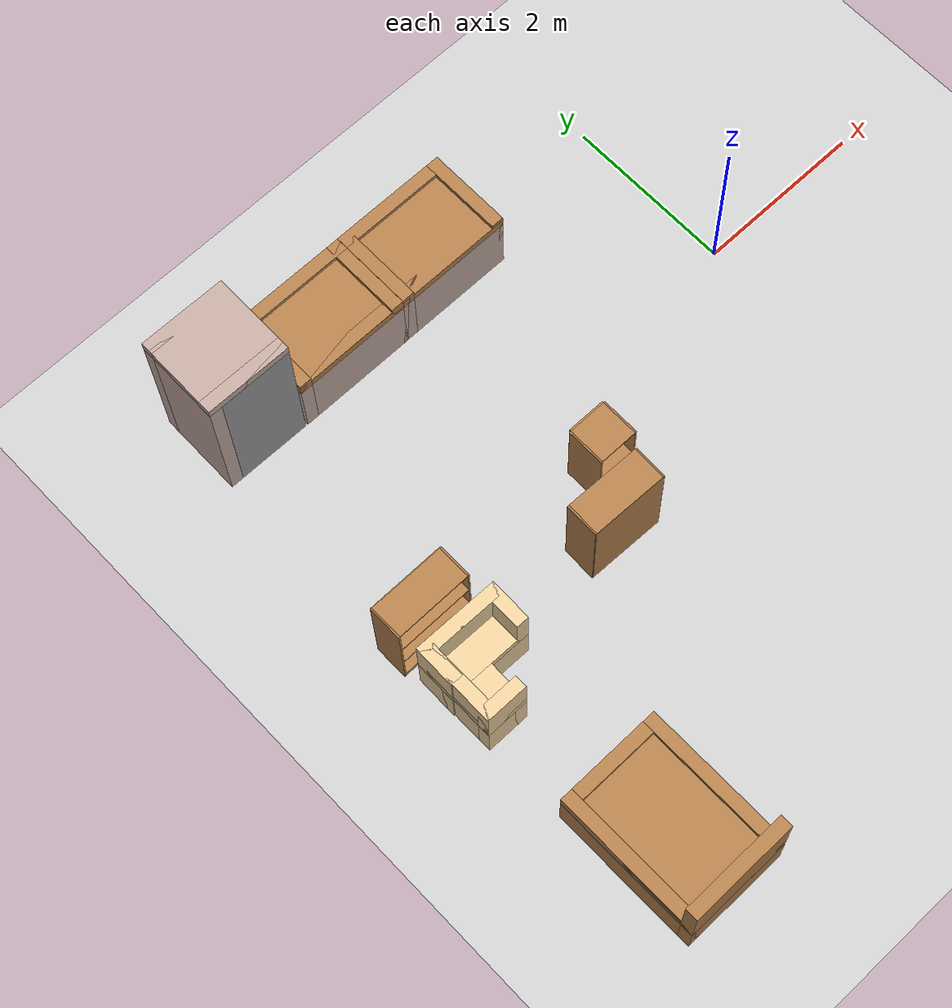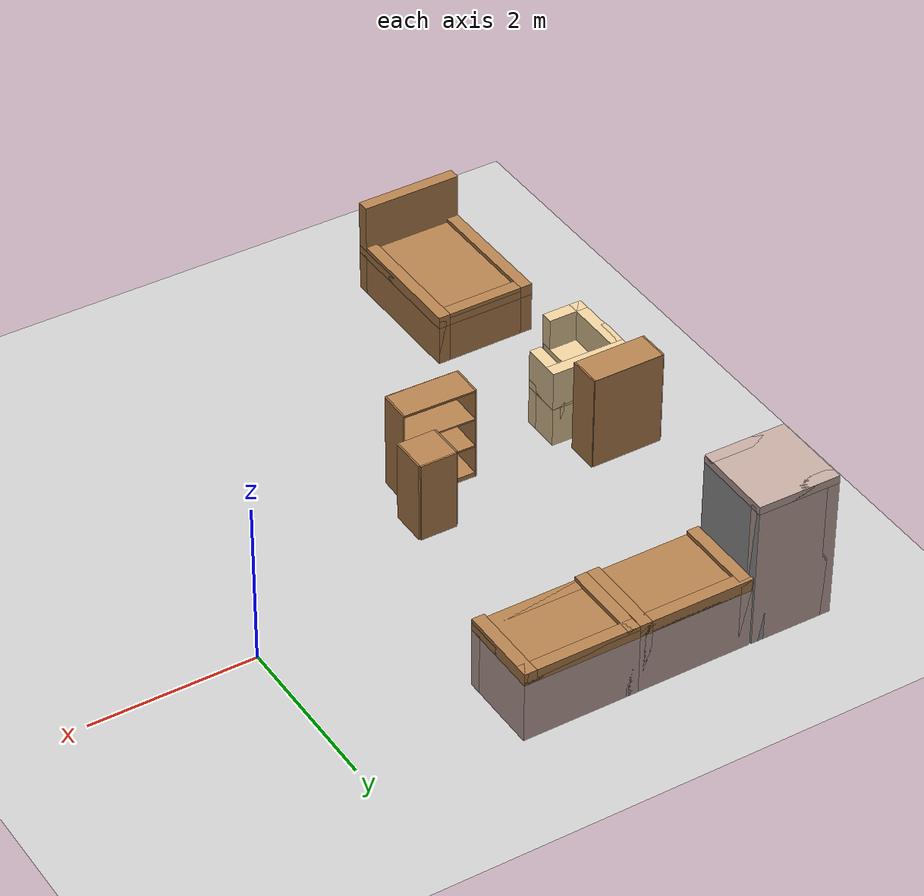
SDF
<sdf version="1.6">
 <world name="default">
  <model name="ground_plane">
   <static>1</static>
   <link name="link">
    <collision name="collision">
     <geometry><plane><normal>0 0 1</normal><size>100 100</size></plane></geometry>
     <surface><friction><ode><mu>100</mu><mu2>50</mu2></ode></friction></surface>
    </collision>
    <visual name="visual">
     <cast_shadows>0</cast_shadows>
     <geometry><plane><normal>0 0 1</normal><size>100 100</size></plane></geometry>
     <material>
      <script><uri>file://media/materials/scripts/gazebo.material</uri><name>Gazebo/Grey</name></script>
     </material>
    </visual>
   </link>
  </model>
  <model name="frig.world">
   <pose>-4.99837 2.01992 0 0 0 -1.57876</pose>
   <link name="Floor_3">
    <collision name="Floor_3_Collision">
     <geometry><box><size>1 1 0.1</size></box></geometry>
     <pose>0 0 0.05 0 -0 0</pose>
    </collision>
    <visual name="Floor_3_Visual">
     <pose>0 0 0.05 0 -0 0</pose>
     <geometry><box><size>1 1 0.1</size></box></geometry>
     <material>
      <script><uri>file://media/materials/scripts/gazebo.material</uri><name>Gazebo/Grey</name></script>
      <ambient>0.760784 0.662745 0.627451 1</ambient>
     </material>
     <meta><layer>1</layer></meta>
    </visual>
    <pose>0 0 1.75 0 -0 0</pose>
   </link>
   <link name="Wall_23">
    <collision name="Wall_23_Collision">
     <geometry><box><size>1 0.15 1.75</size></box></geometry>
     <pose>0 0 0.875 0 -0 0</pose>
    </collision>
    <visual name="Wall_23_Visual">
     <pose>0 0 0.875 0 -0 0</pose>
     <geometry><box><size>1 0.15 1.75</size></box></geometry>
     <material>
      <script><uri>file://media/materials/scripts/gazebo.material</uri><name>Gazebo/Grey</name></script>
      <ambient>1 1 1 1</ambient>
     </material>
     <meta><layer>0</layer></meta>
    </visual>
    <pose>0 0.425 0 0 -0 0</pose>
   </link>
   <link name="Wall_24">
    <collision name="Wall_24_Collision">
     <geometry><box><size>1 0.15 1.75</size></box></geometry>
     <pose>0 0 0.875 0 -0 0</pose>
    </collision>
    <visual name="Wall_24_Visual">
     <pose>0 0 0.875 0 -0 0</pose>
     <geometry><box><size>1 0.15 1.75</size></box></geometry>
     <material>
      <script><uri>file://media/materials/scripts/gazebo.material</uri><name>Gazebo/Grey</name></script>
      <ambient>1 1 1 1</ambient>
     </material>
     <meta><layer>0</layer></meta>
    </visual>
    <pose>0.425 0 0 0 0 -1.5708</pose>
   </link>
   <link name="Wall_25">
    <collision name="Wall_25_Collision">
     <geometry><box><size>1 0.15 1.75</size></box></geometry>
     <pose>0 0 0.875 0 -0 0</pose>
    </collision>
    <visual name="Wall_25_Visual">
     <pose>0 0 0.875 0 -0 0</pose>
     <geometry><box><size>1 0.15 1.75</size></box></geometry>
     <material>
      <script><uri>file://media/materials/scripts/gazebo.material</uri><name>Gazebo/Grey</name></script>
      <ambient>0.760784 0.662745 0.627451 1</ambient>
     </material>
     <meta><layer>0</layer></meta>
    </visual>
    <pose>0 -0.425 0 0 -0 3.14159</pose>
   </link>
   <link name="Wall_26">
    <collision name="Wall_26_Collision">
     <geometry><box><size>1 0.15 1.75</size></box></geometry>
     <pose>0 0 0.875 0 -0 0</pose>
    </collision>
    <visual name="Wall_26_Visual">
     <pose>0 0 0.875 0 -0 0</pose>
     <geometry><box><size>1 0.15 1.75</size></box></geometry>
     <material>
      <script><uri>file://media/materials/scripts/gazebo.material</uri><name>Gazebo/Grey</name></script>
      <ambient>0.760784 0.662745 0.627451 1</ambient>
     </material>
     <meta><layer>0</layer></meta>
    </visual>
    <pose>-0.425 0 0 0 -0 1.5708</pose>
   </link>
   <link name="Wall_29">
    <collision name="Wall_29_Collision">
     <geometry><box><size>1 0.15 0.1</size></box></geometry>
     <pose>0 0 0.05 0 -0 0</pose>
    </collision>
    <visual name="Wall_29_Visual">
     <pose>0 0 0.05 0 -0 0</pose>
     <geometry><box><size>1 0.15 0.1</size></box></geometry>
     <material>
      <script><uri>file://media/materials/scripts/gazebo.material</uri><name>Gazebo/Grey</name></script>
      <ambient>0.760784 0.662745 0.627451 1</ambient>
     </material>
     <meta><layer>1</layer></meta>
    </visual>
    <pose>0.425 0 1.75 0 0 -1.5708</pose>
   </link>
   <link name="Wall_31">
    <collision name="Wall_31_Collision">
     <geometry><box><size>1 0.15 0.1</size></box></geometry>
     <pose>0 0 0.05 0 -0 0</pose>
    </collision>
    <visual name="Wall_31_Visual">
     <pose>0 0 0.05 0 -0 0</pose>
     <geometry><box><size>1 0.15 0.1</size></box></geometry>
     <material>
      <script><uri>file://media/materials/scripts/gazebo.material</uri><name>Gazebo/Grey</name></script>
      <ambient>0.760784 0.662745 0.627451 1</ambient>
     </material>
     <meta><layer>1</layer></meta>
    </visual>
    <pose>-0.425 0 1.75 0 -0 1.5708</pose>
   </link>
   <static>1</static>
  </model>
  <model name="bed.world">
   <pose>-4.84343 -4.15246 0 0 0 -3.1366</pose>
   <link name="Floor_2">
    <collision name="Floor_2_Collision">
     <geometry><box><size>1.25 1.75 0.1</size></box></geometry>
     <pose>0 0 0.05 0 -0 0</pose>
    </collision>
    <visual name="Floor_2_Visual">
     <pose>0 0 0.05 0 -0 0</pose>
     <geometry><box><size>1.25 1.75 0.1</size></box></geometry>
     <material>
      <script><uri>file://media/materials/scripts/gazebo.material</uri><name>Gazebo/Wood</name></script>
      <ambient>1 1 1 1</ambient>
     </material>
     <meta><layer>1</layer></meta>
    </visual>
    <pose>0 0 0.5 0 -0 0</pose>
   </link>
   <link name="Wall_0">
    <collision name="Wall_0_Collision">
     <geometry><box><size>1.25 0.15 0.5</size></box></geometry>
     <pose>0 0 0.25 0 -0 0</pose>
    </collision>
    <visual name="Wall_0_Visual">
     <pose>0 0 0.25 0 -0 0</pose>
     <geometry><box><size>1.25 0.15 0.5</size></box></geometry>
     <material>
      <script><uri>file://media/materials/scripts/gazebo.material</uri><name>Gazebo/Wood</name></script>
      <ambient>1 1 1 1</ambient>
     </material>
     <meta><layer>0</layer></meta>
    </visual>
    <pose>0 0.8 0 0 -0 0</pose>
   </link>
   <link name="Wall_12">
    <collision name="Wall_12_Collision">
     <geometry><box><size>1.25 0.15 0.7</size></box></geometry>
     <pose>0 0 0.35 0 -0 0</pose>
    </collision>
    <visual name="Wall_12_Visual">
     <pose>0 0 0.35 0 -0 0</pose>
     <geometry><box><size>1.25 0.15 0.7</size></box></geometry>
     <material>
      <script><uri>file://media/materials/scripts/gazebo.material</uri><name>Gazebo/Wood</name></script>
      <ambient>1 1 1 1</ambient>
     </material>
     <meta><layer>1</layer></meta>
    </visual>
    <pose>0 0.8 0.5 0 -0 0</pose>
   </link>
   <link name="Wall_13">
    <collision name="Wall_13_Collision">
     <geometry><box><size>1.75 0.15 0.15</size></box></geometry>
     <pose>0 0 0.075 0 -0 0</pose>
    </collision>
    <visual name="Wall_13_Visual">
     <pose>0 0 0.075 0 -0 0</pose>
     <geometry><box><size>1.75 0.15 0.15</size></box></geometry>
     <material>
      <script><uri>file://media/materials/scripts/gazebo.material</uri><name>Gazebo/Wood</name></script>
      <ambient>1 1 1 1</ambient>
     </material>
     <meta><layer>1</layer></meta>
    </visual>
    <pose>-0.55 0 0.5 0 0 -1.5708</pose>
   </link>
   <link name="Wall_14">
    <collision name="Wall_14_Collision">
     <geometry><box><size>1.25 0.15 0.15</size></box></geometry>
     <pose>0 0 0.075 0 -0 0</pose>
    </collision>
    <visual name="Wall_14_Visual">
     <pose>0 0 0.075 0 -0 0</pose>
     <geometry><box><size>1.25 0.15 0.15</size></box></geometry>
     <material>
      <script><uri>file://media/materials/scripts/gazebo.material</uri><name>Gazebo/Wood</name></script>
      <ambient>1 1 1 1</ambient>
     </material>
     <meta><layer>1</layer></meta>
    </visual>
    <pose>0 -0.8 0.5 0 -0 0</pose>
   </link>
   <link name="Wall_15">
    <collision name="Wall_15_Collision">
     <geometry><box><size>1.75 0.15 0.15</size></box></geometry>
     <pose>0 0 0.075 0 -0 0</pose>
    </collision>
    <visual name="Wall_15_Visual">
     <pose>0 0 0.075 0 -0 0</pose>
     <geometry><box><size>1.75 0.15 0.15</size></box></geometry>
     <material>
      <script><uri>file://media/materials/scripts/gazebo.material</uri><name>Gazebo/Wood</name></script>
      <ambient>1 1 1 1</ambient>
     </material>
     <meta><layer>1</layer></meta>
    </visual>
    <pose>0.55 0 0.5 0 -0 1.5708</pose>
   </link>
   <link name="Wall_4">
    <collision name="Wall_4_Collision">
     <geometry><box><size>1.75 0.15 0.5</size></box></geometry>
     <pose>0 0 0.25 0 -0 0</pose>
    </collision>
    <visual name="Wall_4_Visual">
     <pose>0 0 0.25 0 -0 0</pose>
     <geometry><box><size>1.75 0.15 0.5</size></box></geometry>
     <material>
      <script><uri>file://media/materials/scripts/gazebo.material</uri><name>Gazebo/Wood</name></script>
      <ambient>1 1 1 1</ambient>
     </material>
     <meta><layer>0</layer></meta>
    </visual>
    <pose>-0.55 0 0 0 0 -1.5708</pose>
   </link>
   <link name="Wall_5">
    <collision name="Wall_5_Collision">
     <geometry><box><size>1.25 0.15 0.5</size></box></geometry>
     <pose>0 0 0.25 0 -0 0</pose>
    </collision>
    <visual name="Wall_5_Visual">
     <pose>0 0 0.25 0 -0 0</pose>
     <geometry><box><size>1.25 0.15 0.5</size></box></geometry>
     <material>
      <script><uri>file://media/materials/scripts/gazebo.material</uri><name>Gazebo/Wood</name></script>
      <ambient>1 1 1 1</ambient>
     </material>
     <meta><layer>0</layer></meta>
    </visual>
    <pose>0 -0.8 0 0 -0 0</pose>
   </link>
   <link name="Wall_6">
    <collision name="Wall_6_Collision">
     <geometry><box><size>1.75 0.15 0.5</size></box></geometry>
     <pose>0 0 0.25 0 -0 0</pose>
    </collision>
    <visual name="Wall_6_Visual">
     <pose>0 0 0.25 0 -0 0</pose>
     <geometry><box><size>1.75 0.15 0.5</size></box></geometry>
     <material>
      <script><uri>file://media/materials/scripts/gazebo.material</uri><name>Gazebo/Wood</name></script>
      <ambient>1 1 1 1</ambient>
     </material>
     <meta><layer>0</layer></meta>
    </visual>
    <pose>0.55 0 0 0 -0 1.5708</pose>
   </link>
   <static>1</static>
  </model>
  <model name="bookshelf_0">
   <static>1</static>
   <link name="link">
    <inertial><mass>1</mass></inertial>
    <collision name="back">
     <pose>0 0.005 0.6 0 -0 0</pose>
     <geometry><box><size>0.9 0.01 1.2</size></box></geometry>
    </collision>
    <visual name="visual1">
     <pose>0 0.005 0.6 0 -0 0</pose>
     <geometry><box><size>0.9 0.01 1.2</size></box></geometry>
     <material>
      <script><uri>file://media/materials/scripts/gazebo.material</uri><name>Gazebo/Wood</name></script>
     </material>
    </visual>
    <collision name="left_side">
     <pose>0.45 -0.195 0.6 0 -0 0</pose>
     <geometry><box><size>0.02 0.4 1.2</size></box></geometry>
    </collision>
    <visual name="visual2">
     <pose>0.45 -0.195 0.6 0 -0 0</pose>
     <geometry><box><size>0.02 0.4 1.2</size></box></geometry>
     <material>
      <script><uri>file://media/materials/scripts/gazebo.material</uri><name>Gazebo/Wood</name></script>
     </material>
    </visual>
    <collision name="right_side">
     <pose>-0.45 -0.195 0.6 0 -0 0</pose>
     <geometry><box><size>0.02 0.4 1.2</size></box></geometry>
    </collision>
    <visual name="visual3">
     <pose>-0.45 -0.195 0.6 0 -0 0</pose>
     <geometry><box><size>0.02 0.4 1.2</size></box></geometry>
     <material>
      <script><uri>file://media/materials/scripts/gazebo.material</uri><name>Gazebo/Wood</name></script>
     </material>
    </visual>
    <collision name="bottom">
     <pose>0 -0.195 0.03 0 -0 0</pose>
     <geometry><box><size>0.88 0.4 0.06</size></box></geometry>
    </collision>
    <visual name="visual4">
     <pose>0 -0.195 0.03 0 -0 0</pose>
     <geometry><box><size>0.88 0.4 0.06</size></box></geometry>
     <material>
      <script><uri>file://media/materials/scripts/gazebo.material</uri><name>Gazebo/Wood</name></script>
     </material>
    </visual>
    <collision name="top">
     <pose>0 -0.195 1.19 0 -0 0</pose>
     <geometry><box><size>0.88 0.4 0.02</size></box></geometry>
    </collision>
    <visual name="visual5">
     <pose>0 -0.195 1.19 0 -0 0</pose>
     <geometry><box><size>0.88 0.4 0.02</size></box></geometry>
     <material>
      <script><uri>file://media/materials/scripts/gazebo.material</uri><name>Gazebo/Wood</name></script>
     </material>
    </visual>
    <collision name="low_shelf">
     <pose>0 -0.195 0.43 0 -0 0</pose>
     <geometry><box><size>0.88 0.4 0.02</size></box></geometry>
    </collision>
    <visual name="visual6">
     <pose>0 -0.195 0.43 0 -0 0</pose>
     <geometry><box><size>0.88 0.4 0.02</size></box></geometry>
     <material>
      <script><uri>file://media/materials/scripts/gazebo.material</uri><name>Gazebo/Wood</name></script>
     </material>
    </visual>
    <collision name="high_shelf">
     <pose>0 -0.195 0.8 0 -0 0</pose>
     <geometry><box><size>0.88 0.4 0.02</size></box></geometry>
    </collision>
    <visual name="visual7">
     <pose>0 -0.195 0.8 0 -0 0</pose>
     <geometry><box><size>0.88 0.4 0.02</size></box></geometry>
     <material>
      <script><uri>file://media/materials/scripts/gazebo.material</uri><name>Gazebo/Wood</name></script>
     </material>
    </visual>
   </link>
   <pose>-3.06604 -1.74619 0 0 -0 3.11466</pose>
  </model>
  <model name="sofa_short.world_2">
   <pose>-5.25664 -1.83372 0 0 0 -1.57344</pose>
   <link name="Floor_0">
    <collision name="Floor_0_Collision">
     <geometry><box><size>1 0.5 0.1</size></box></geometry>
     <pose>0 0 0.05 0 -0 0</pose>
    </collision>
    <visual name="Floor_0_Visual">
     <pose>0 0 0.05 0 -0 0</pose>
     <geometry><box><size>1 0.5 0.1</size></box></geometry>
     <material>
      <script><uri>file://media/materials/scripts/gazebo.material</uri><name>Gazebo/Grey</name></script>
      <ambient>0.921569 0.807843 0.615686 1</ambient>
     </material>
     <meta><layer>1</layer></meta>
    </visual>
    <pose>0 0 0.5 0 -0 0</pose>
   </link>
   <link name="Wall_0">
    <collision name="Wall_0_Collision">
     <geometry><box><size>1 0.15 0.5</size></box></geometry>
     <pose>0 0 0.25 0 -0 0</pose>
    </collision>
    <visual name="Wall_0_Visual">
     <pose>0 0 0.25 0 -0 0</pose>
     <geometry><box><size>1 0.15 0.5</size></box></geometry>
     <material>
      <script><uri>file://media/materials/scripts/gazebo.material</uri><name>Gazebo/Grey</name></script>
      <ambient>0.921569 0.807843 0.615686 1</ambient>
     </material>
     <meta><layer>0</layer></meta>
    </visual>
    <pose>0 -0.175 0 0 -0 0</pose>
   </link>
   <link name="Wall_1">
    <collision name="Wall_1_Collision">
     <geometry><box><size>0.5 0.15 0.5</size></box></geometry>
     <pose>0 0 0.25 0 -0 0</pose>
    </collision>
    <visual name="Wall_1_Visual">
     <pose>0 0 0.25 0 -0 0</pose>
     <geometry><box><size>0.5 0.15 0.5</size></box></geometry>
     <material>
      <script><uri>file://media/materials/scripts/gazebo.material</uri><name>Gazebo/Grey</name></script>
      <ambient>0.921569 0.807843 0.615686 1</ambient>
     </material>
     <meta><layer>0</layer></meta>
    </visual>
    <pose>0.425 0 0 0 -0 1.5708</pose>
   </link>
   <link name="Wall_2">
    <collision name="Wall_2_Collision">
     <geometry><box><size>1 0.15 0.5</size></box></geometry>
     <pose>0 0 0.25 0 -0 0</pose>
    </collision>
    <visual name="Wall_2_Visual">
     <pose>0 0 0.25 0 -0 0</pose>
     <geometry><box><size>1 0.15 0.5</size></box></geometry>
     <material>
      <script><uri>file://media/materials/scripts/gazebo.material</uri><name>Gazebo/Grey</name></script>
      <ambient>0.921569 0.807843 0.615686 1</ambient>
     </material>
     <meta><layer>0</layer></meta>
    </visual>
    <pose>0 0.175 0 0 -0 3.14159</pose>
   </link>
   <link name="Wall_3">
    <collision name="Wall_3_Collision">
     <geometry><box><size>0.5 0.15 0.5</size></box></geometry>
     <pose>0 0 0.25 0 -0 0</pose>
    </collision>
    <visual name="Wall_3_Visual">
     <pose>0 0 0.25 0 -0 0</pose>
     <geometry><box><size>0.5 0.15 0.5</size></box></geometry>
     <material>
      <script><uri>file://media/materials/scripts/gazebo.material</uri><name>Gazebo/Grey</name></script>
      <ambient>0.921569 0.807843 0.615686 1</ambient>
     </material>
     <meta><layer>0</layer></meta>
    </visual>
    <pose>-0.425 0 0 0 0 -1.5708</pose>
   </link>
   <link name="Wall_5">
    <collision name="Wall_5_Collision">
     <geometry><box><size>1 0.15 0.5</size></box></geometry>
     <pose>0 0 0.25 0 -0 0</pose>
    </collision>
    <visual name="Wall_5_Visual">
     <pose>0 0 0.25 0 -0 0</pose>
     <geometry><box><size>1 0.15 0.5</size></box></geometry>
     <material>
      <script><uri>file://media/materials/scripts/gazebo.material</uri><name>Gazebo/Grey</name></script>
      <ambient>0.921569 0.807843 0.615686 1</ambient>
     </material>
     <meta><layer>1</layer></meta>
    </visual>
    <pose>0 -0.175 0.5 0 -0 0</pose>
   </link>
   <link name="Wall_6">
    <collision name="Wall_6_Collision">
     <geometry><box><size>0.5 0.15 0.5</size></box></geometry>
     <pose>0 0 0.25 0 -0 0</pose>
    </collision>
    <visual name="Wall_6_Visual">
     <pose>0 0 0.25 0 -0 0</pose>
     <geometry><box><size>0.5 0.15 0.5</size></box></geometry>
     <material>
      <script><uri>file://media/materials/scripts/gazebo.material</uri><name>Gazebo/Grey</name></script>
      <ambient>0.921569 0.807843 0.615686 1</ambient>
     </material>
     <meta><layer>1</layer></meta>
    </visual>
    <pose>0.425 0 0.5 0 -0 1.5708</pose>
   </link>
   <link name="Wall_8">
    <collision name="Wall_8_Collision">
     <geometry><box><size>0.5 0.15 0.5</size></box></geometry>
     <pose>0 0 0.25 0 -0 0</pose>
    </collision>
    <visual name="Wall_8_Visual">
     <pose>0 0 0.25 0 -0 0</pose>
     <geometry><box><size>0.5 0.15 0.5</size></box></geometry>
     <material>
      <script><uri>file://media/materials/scripts/gazebo.material</uri><name>Gazebo/Grey</name></script>
      <ambient>0.921569 0.807843 0.615686 1</ambient>
     </material>
     <meta><layer>1</layer></meta>
    </visual>
    <pose>-0.425 0 0.5 0 0 -1.5708</pose>
   </link>
   <static>1</static>
  </model>
  <model name="sofa_short.world_3">
   <pose>-5.01508 -1.5916 0 0 -0 3.12784</pose>
   <link name="Floor_0">
    <collision name="Floor_0_Collision">
     <geometry><box><size>1 0.5 0.1</size></box></geometry>
     <pose>0 0 0.05 0 -0 0</pose>
    </collision>
    <visual name="Floor_0_Visual">
     <pose>0 0 0.05 0 -0 0</pose>
     <geometry><box><size>1 0.5 0.1</size></box></geometry>
     <material>
      <script><uri>file://media/materials/scripts/gazebo.material</uri><name>Gazebo/Grey</name></script>
      <ambient>0.921569 0.807843 0.615686 1</ambient>
     </material>
     <meta><layer>1</layer></meta>
    </visual>
    <pose>0 0 0.5 0 -0 0</pose>
   </link>
   <link name="Wall_0">
    <collision name="Wall_0_Collision">
     <geometry><box><size>1 0.15 0.5</size></box></geometry>
     <pose>0 0 0.25 0 -0 0</pose>
    </collision>
    <visual name="Wall_0_Visual">
     <pose>0 0 0.25 0 -0 0</pose>
     <geometry><box><size>1 0.15 0.5</size></box></geometry>
     <material>
      <script><uri>file://media/materials/scripts/gazebo.material</uri><name>Gazebo/Grey</name></script>
      <ambient>0.921569 0.807843 0.615686 1</ambient>
     </material>
     <meta><layer>0</layer></meta>
    </visual>
    <pose>0 -0.175 0 0 -0 0</pose>
   </link>
   <link name="Wall_1">
    <collision name="Wall_1_Collision">
     <geometry><box><size>0.5 0.15 0.5</size></box></geometry>
     <pose>0 0 0.25 0 -0 0</pose>
    </collision>
    <visual name="Wall_1_Visual">
     <pose>0 0 0.25 0 -0 0</pose>
     <geometry><box><size>0.5 0.15 0.5</size></box></geometry>
     <material>
      <script><uri>file://media/materials/scripts/gazebo.material</uri><name>Gazebo/Grey</name></script>
      <ambient>0.921569 0.807843 0.615686 1</ambient>
     </material>
     <meta><layer>0</layer></meta>
    </visual>
    <pose>0.425 0 0 0 -0 1.5708</pose>
   </link>
   <link name="Wall_2">
    <collision name="Wall_2_Collision">
     <geometry><box><size>1 0.15 0.5</size></box></geometry>
     <pose>0 0 0.25 0 -0 0</pose>
    </collision>
    <visual name="Wall_2_Visual">
     <pose>0 0 0.25 0 -0 0</pose>
     <geometry><box><size>1 0.15 0.5</size></box></geometry>
     <material>
      <script><uri>file://media/materials/scripts/gazebo.material</uri><name>Gazebo/Grey</name></script>
      <ambient>0.921569 0.807843 0.615686 1</ambient>
     </material>
     <meta><layer>0</layer></meta>
    </visual>
    <pose>0 0.175 0 0 -0 3.14159</pose>
   </link>
   <link name="Wall_3">
    <collision name="Wall_3_Collision">
     <geometry><box><size>0.5 0.15 0.5</size></box></geometry>
     <pose>0 0 0.25 0 -0 0</pose>
    </collision>
    <visual name="Wall_3_Visual">
     <pose>0 0 0.25 0 -0 0</pose>
     <geometry><box><size>0.5 0.15 0.5</size></box></geometry>
     <material>
      <script><uri>file://media/materials/scripts/gazebo.material</uri><name>Gazebo/Grey</name></script>
      <ambient>0.921569 0.807843 0.615686 1</ambient>
     </material>
     <meta><layer>0</layer></meta>
    </visual>
    <pose>-0.425 0 0 0 0 -1.5708</pose>
   </link>
   <link name="Wall_5">
    <collision name="Wall_5_Collision">
     <geometry><box><size>1 0.15 0.5</size></box></geometry>
     <pose>0 0 0.25 0 -0 0</pose>
    </collision>
    <visual name="Wall_5_Visual">
     <pose>0 0 0.25 0 -0 0</pose>
     <geometry><box><size>1 0.15 0.5</size></box></geometry>
     <material>
      <script><uri>file://media/materials/scripts/gazebo.material</uri><name>Gazebo/Grey</name></script>
      <ambient>0.921569 0.807843 0.615686 1</ambient>
     </material>
     <meta><layer>1</layer></meta>
    </visual>
    <pose>0 -0.175 0.5 0 -0 0</pose>
   </link>
   <link name="Wall_6">
    <collision name="Wall_6_Collision">
     <geometry><box><size>0.5 0.15 0.5</size></box></geometry>
     <pose>0 0 0.25 0 -0 0</pose>
    </collision>
    <visual name="Wall_6_Visual">
     <pose>0 0 0.25 0 -0 0</pose>
     <geometry><box><size>0.5 0.15 0.5</size></box></geometry>
     <material>
      <script><uri>file://media/materials/scripts/gazebo.material</uri><name>Gazebo/Grey</name></script>
      <ambient>0.921569 0.807843 0.615686 1</ambient>
     </material>
     <meta><layer>1</layer></meta>
    </visual>
    <pose>0.425 0 0.5 0 -0 1.5708</pose>
   </link>
   <link name="Wall_8">
    <collision name="Wall_8_Collision">
     <geometry><box><size>0.5 0.15 0.5</size></box></geometry>
     <pose>0 0 0.25 0 -0 0</pose>
    </collision>
    <visual name="Wall_8_Visual">
     <pose>0 0 0.25 0 -0 0</pose>
     <geometry><box><size>0.5 0.15 0.5</size></box></geometry>
     <material>
      <script><uri>file://media/materials/scripts/gazebo.material</uri><name>Gazebo/Grey</name></script>
      <ambient>0.921569 0.807843 0.615686 1</ambient>
     </material>
     <meta><layer>1</layer></meta>
    </visual>
    <pose>-0.425 0 0.5 0 0 -1.5708</pose>
   </link>
   <static>1</static>
  </model>
  <model name="kitchen.world">
   <pose>-3.77444 2.01239 0 0 -0 0</pose>
   <link name="Floor_0">
    <collision name="Floor_0_Collision">
     <geometry><box><size>1.4 1 0.1</size></box></geometry>
     <pose>0 0 0.05 0 -0 0</pose>
    </collision>
    <visual name="Floor_0_Visual">
     <pose>0 0 0.05 0 -0 0</pose>
     <geometry><box><size>1.4 1 0.1</size></box></geometry>
     <material>
      <script><uri>file://media/materials/scripts/gazebo.material</uri><name>Gazebo/Wood</name></script>
      <ambient>1 1 1 1</ambient>
     </material>
     <meta><layer>1</layer></meta>
    </visual>
    <pose>0 0 0.75 0 -0 0</pose>
   </link>
   <link name="Wall_0">
    <collision name="Wall_0_Collision">
     <geometry><box><size>1.4 0.15 0.75</size></box></geometry>
     <pose>0 0 0.375 0 -0 0</pose>
    </collision>
    <visual name="Wall_0_Visual">
     <pose>0 0 0.375 0 -0 0</pose>
     <geometry><box><size>1.4 0.15 0.75</size></box></geometry>
     <material>
      <script><uri>file://media/materials/scripts/gazebo.material</uri><name>Gazebo/Grey</name></script>
      <ambient>0.760784 0.662745 0.627451 1</ambient>
     </material>
     <meta><layer>0</layer></meta>
    </visual>
    <pose>0 0.425 0 0 -0 0</pose>
   </link>
   <link name="Wall_10">
    <collision name="Wall_10_Collision">
     <geometry><box><size>1.4 0.15 0.1</size></box></geometry>
     <pose>0 0 0.05 0 -0 0</pose>
    </collision>
    <visual name="Wall_10_Visual">
     <pose>0 0 0.05 0 -0 0</pose>
     <geometry><box><size>1.4 0.15 0.1</size></box></geometry>
     <material>
      <script><uri>file://media/materials/scripts/gazebo.material</uri><name>Gazebo/Wood</name></script>
      <ambient>1 1 1 1</ambient>
     </material>
     <meta><layer>1</layer></meta>
    </visual>
    <pose>0 -0.425 0.75 0 -0 0</pose>
   </link>
   <link name="Wall_2">
    <collision name="Wall_2_Collision">
     <geometry><box><size>1 0.15 0.75</size></box></geometry>
     <pose>0 0 0.375 0 -0 0</pose>
    </collision>
    <visual name="Wall_2_Visual">
     <pose>0 0 0.375 0 -0 0</pose>
     <geometry><box><size>1 0.15 0.75</size></box></geometry>
     <material>
      <script><uri>file://media/materials/scripts/gazebo.material</uri><name>Gazebo/Grey</name></script>
      <ambient>0.760784 0.662745 0.627451 1</ambient>
     </material>
     <meta><layer>0</layer></meta>
    </visual>
    <pose>0.625 0 0 0 0 -1.5708</pose>
   </link>
   <link name="Wall_4">
    <collision name="Wall_4_Collision">
     <geometry><box><size>1 0.15 0.75</size></box></geometry>
     <pose>0 0 0.375 0 -0 0</pose>
    </collision>
    <visual name="Wall_4_Visual">
     <pose>0 0 0.375 0 -0 0</pose>
     <geometry><box><size>1 0.15 0.75</size></box></geometry>
     <material>
      <script><uri>file://media/materials/scripts/gazebo.material</uri><name>Gazebo/Grey</name></script>
      <ambient>0.760784 0.662745 0.627451 1</ambient>
     </material>
     <meta><layer>0</layer></meta>
    </visual>
    <pose>-0.625 0 0 0 0 -1.5708</pose>
   </link>
   <link name="Wall_5">
    <collision name="Wall_5_Collision">
     <geometry><box><size>1.4 0.15 0.75</size></box></geometry>
     <pose>0 0 0.375 0 -0 0</pose>
    </collision>
    <visual name="Wall_5_Visual">
     <pose>0 0 0.375 0 -0 0</pose>
     <geometry><box><size>1.4 0.15 0.75</size></box></geometry>
     <material>
      <script><uri>file://media/materials/scripts/gazebo.material</uri><name>Gazebo/Grey</name></script>
      <ambient>0.760784 0.662745 0.627451 1</ambient>
     </material>
     <meta><layer>0</layer></meta>
    </visual>
    <pose>0 -0.425 0 0 -0 0</pose>
   </link>
   <link name="Wall_7">
    <collision name="Wall_7_Collision">
     <geometry><box><size>1.4 0.15 0.15</size></box></geometry>
     <pose>0 0 0.075 0 -0 0</pose>
    </collision>
    <visual name="Wall_7_Visual">
     <pose>0 0 0.075 0 -0 0</pose>
     <geometry><box><size>1.4 0.15 0.15</size></box></geometry>
     <material>
      <script><uri>file://media/materials/scripts/gazebo.material</uri><name>Gazebo/Wood</name></script>
      <ambient>1 1 1 1</ambient>
     </material>
     <meta><layer>1</layer></meta>
    </visual>
    <pose>0 0.425 0.75 0 -0 0</pose>
   </link>
   <link name="Wall_8">
    <collision name="Wall_8_Collision">
     <geometry><box><size>1 0.15 0.15</size></box></geometry>
     <pose>0 0 0.075 0 -0 0</pose>
    </collision>
    <visual name="Wall_8_Visual">
     <pose>0 0 0.075 0 -0 0</pose>
     <geometry><box><size>1 0.15 0.15</size></box></geometry>
     <material>
      <script><uri>file://media/materials/scripts/gazebo.material</uri><name>Gazebo/Wood</name></script>
      <ambient>1 1 1 1</ambient>
     </material>
     <meta><layer>1</layer></meta>
    </visual>
    <pose>0.625 0 0.75 0 0 -1.5708</pose>
   </link>
   <link name="Wall_9">
    <collision name="Wall_9_Collision">
     <geometry><box><size>1 0.15 0.15</size></box></geometry>
     <pose>0 0 0.075 0 -0 0</pose>
    </collision>
    <visual name="Wall_9_Visual">
     <pose>0 0 0.075 0 -0 0</pose>
     <geometry><box><size>1 0.15 0.15</size></box></geometry>
     <material>
      <script><uri>file://media/materials/scripts/gazebo.material</uri><name>Gazebo/Wood</name></script>
      <ambient>1 1 1 1</ambient>
     </material>
     <meta><layer>1</layer></meta>
    </visual>
    <pose>-0.625 0 0.75 0 0 -1.5708</pose>
   </link>
   <static>1</static>
  </model>
  <model name="kitchen.world_0">
   <pose>-2.37362 2.01434 0 0 -0 0</pose>
   <link name="Floor_0">
    <collision name="Floor_0_Collision">
     <geometry><box><size>1.4 1 0.1</size></box></geometry>
     <pose>0 0 0.05 0 -0 0</pose>
    </collision>
    <visual name="Floor_0_Visual">
     <pose>0 0 0.05 0 -0 0</pose>
     <geometry><box><size>1.4 1 0.1</size></box></geometry>
     <material>
      <script><uri>file://media/materials/scripts/gazebo.material</uri><name>Gazebo/Wood</name></script>
      <ambient>1 1 1 1</ambient>
     </material>
     <meta><layer>1</layer></meta>
    </visual>
    <pose>0 0 0.75 0 -0 0</pose>
   </link>
   <link name="Wall_0">
    <collision name="Wall_0_Collision">
     <geometry><box><size>1.4 0.15 0.75</size></box></geometry>
     <pose>0 0 0.375 0 -0 0</pose>
    </collision>
    <visual name="Wall_0_Visual">
     <pose>0 0 0.375 0 -0 0</pose>
     <geometry><box><size>1.4 0.15 0.75</size></box></geometry>
     <material>
      <script><uri>file://media/materials/scripts/gazebo.material</uri><name>Gazebo/Grey</name></script>
      <ambient>0.760784 0.662745 0.627451 1</ambient>
     </material>
     <meta><layer>0</layer></meta>
    </visual>
    <pose>0 0.425 0 0 -0 0</pose>
   </link>
   <link name="Wall_10">
    <collision name="Wall_10_Collision">
     <geometry><box><size>1.4 0.15 0.1</size></box></geometry>
     <pose>0 0 0.05 0 -0 0</pose>
    </collision>
    <visual name="Wall_10_Visual">
     <pose>0 0 0.05 0 -0 0</pose>
     <geometry><box><size>1.4 0.15 0.1</size></box></geometry>
     <material>
      <script><uri>file://media/materials/scripts/gazebo.material</uri><name>Gazebo/Wood</name></script>
      <ambient>1 1 1 1</ambient>
     </material>
     <meta><layer>1</layer></meta>
    </visual>
    <pose>0 -0.425 0.75 0 -0 0</pose>
   </link>
   <link name="Wall_2">
    <collision name="Wall_2_Collision">
     <geometry><box><size>1 0.15 0.75</size></box></geometry>
     <pose>0 0 0.375 0 -0 0</pose>
    </collision>
    <visual name="Wall_2_Visual">
     <pose>0 0 0.375 0 -0 0</pose>
     <geometry><box><size>1 0.15 0.75</size></box></geometry>
     <material>
      <script><uri>file://media/materials/scripts/gazebo.material</uri><name>Gazebo/Grey</name></script>
      <ambient>0.760784 0.662745 0.627451 1</ambient>
     </material>
     <meta><layer>0</layer></meta>
    </visual>
    <pose>0.625 0 0 0 0 -1.5708</pose>
   </link>
   <link name="Wall_4">
    <collision name="Wall_4_Collision">
     <geometry><box><size>1 0.15 0.75</size></box></geometry>
     <pose>0 0 0.375 0 -0 0</pose>
    </collision>
    <visual name="Wall_4_Visual">
     <pose>0 0 0.375 0 -0 0</pose>
     <geometry><box><size>1 0.15 0.75</size></box></geometry>
     <material>
      <script><uri>file://media/materials/scripts/gazebo.material</uri><name>Gazebo/Grey</name></script>
      <ambient>0.760784 0.662745 0.627451 1</ambient>
     </material>
     <meta><layer>0</layer></meta>
    </visual>
    <pose>-0.625 0 0 0 0 -1.5708</pose>
   </link>
   <link name="Wall_5">
    <collision name="Wall_5_Collision">
     <geometry><box><size>1.4 0.15 0.75</size></box></geometry>
     <pose>0 0 0.375 0 -0 0</pose>
    </collision>
    <visual name="Wall_5_Visual">
     <pose>0 0 0.375 0 -0 0</pose>
     <geometry><box><size>1.4 0.15 0.75</size></box></geometry>
     <material>
      <script><uri>file://media/materials/scripts/gazebo.material</uri><name>Gazebo/Grey</name></script>
      <ambient>0.760784 0.662745 0.627451 1</ambient>
     </material>
     <meta><layer>0</layer></meta>
    </visual>
    <pose>0 -0.425 0 0 -0 0</pose>
   </link>
   <link name="Wall_7">
    <collision name="Wall_7_Collision">
     <geometry><box><size>1.4 0.15 0.15</size></box></geometry>
     <pose>0 0 0.075 0 -0 0</pose>
    </collision>
    <visual name="Wall_7_Visual">
     <pose>0 0 0.075 0 -0 0</pose>
     <geometry><box><size>1.4 0.15 0.15</size></box></geometry>
     <material>
      <script><uri>file://media/materials/scripts/gazebo.material</uri><name>Gazebo/Wood</name></script>
      <ambient>1 1 1 1</ambient>
     </material>
     <meta><layer>1</layer></meta>
    </visual>
    <pose>0 0.425 0.75 0 -0 0</pose>
   </link>
   <link name="Wall_8">
    <collision name="Wall_8_Collision">
     <geometry><box><size>1 0.15 0.15</size></box></geometry>
     <pose>0 0 0.075 0 -0 0</pose>
    </collision>
    <visual name="Wall_8_Visual">
     <pose>0 0 0.075 0 -0 0</pose>
     <geometry><box><size>1 0.15 0.15</size></box></geometry>
     <material>
      <script><uri>file://media/materials/scripts/gazebo.material</uri><name>Gazebo/Wood</name></script>
      <ambient>1 1 1 1</ambient>
     </material>
     <meta><layer>1</layer></meta>
    </visual>
    <pose>0.625 0 0.75 0 0 -1.5708</pose>
   </link>
   <link name="Wall_9">
    <collision name="Wall_9_Collision">
     <geometry><box><size>1 0.15 0.15</size></box></geometry>
     <pose>0 0 0.075 0 -0 0</pose>
    </collision>
    <visual name="Wall_9_Visual">
     <pose>0 0 0.075 0 -0 0</pose>
     <geometry><box><size>1 0.15 0.15</size></box></geometry>
     <material>
      <script><uri>file://media/materials/scripts/gazebo.material</uri><name>Gazebo/Wood</name></script>
      <ambient>1 1 1 1</ambient>
     </material>
     <meta><layer>1</layer></meta>
    </visual>
    <pose>-0.625 0 0.75 0 0 -1.5708</pose>
   </link>
   <static>1</static>
  </model>
  <model name="bookshelf_1">
   <static>1</static>
   <link name="link">
    <inertial><mass>1</mass></inertial>
    <collision name="back">
     <pose>0 0.005 0.6 0 -0 0</pose>
     <geometry><box><size>0.9 0.01 1.2</size></box></geometry>
    </collision>
    <visual name="visual1">
     <pose>0 0.005 0.6 0 -0 0</pose>
     <geometry><box><size>0.9 0.01 1.2</size></box></geometry>
     <material>
      <script><uri>file://media/materials/scripts/gazebo.material</uri><name>Gazebo/Wood</name></script>
     </material>
    </visual>
    <collision name="left_side">
     <pose>0.45 -0.195 0.6 0 -0 0</pose>
     <geometry><box><size>0.02 0.4 1.2</size></box></geometry>
    </collision>
    <visual name="visual2">
     <pose>0.45 -0.195 0.6 0 -0 0</pose>
     <geometry><box><size>0.02 0.4 1.2</size></box></geometry>
     <material>
      <script><uri>file://media/materials/scripts/gazebo.material</uri><name>Gazebo/Wood</name></script>
     </material>
    </visual>
    <collision name="right_side">
     <pose>-0.45 -0.195 0.6 0 -0 0</pose>
     <geometry><box><size>0.02 0.4 1.2</size></box></geometry>
    </collision>
    <visual name="visual3">
     <pose>-0.45 -0.195 0.6 0 -0 0</pose>
     <geometry><box><size>0.02 0.4 1.2</size></box></geometry>
     <material>
      <script><uri>file://media/materials/scripts/gazebo.material</uri><name>Gazebo/Wood</name></script>
     </material>
    </visual>
    <collision name="bottom">
     <pose>0 -0.195 0.03 0 -0 0</pose>
     <geometry><box><size>0.88 0.4 0.06</size></box></geometry>
    </collision>
    <visual name="visual4">
     <pose>0 -0.195 0.03 0 -0 0</pose>
     <geometry><box><size>0.88 0.4 0.06</size></box></geometry>
     <material>
      <script><uri>file://media/materials/scripts/gazebo.material</uri><name>Gazebo/Wood</name></script>
     </material>
    </visual>
    <collision name="top">
     <pose>0 -0.195 1.19 0 -0 0</pose>
     <geometry><box><size>0.88 0.4 0.02</size></box></geometry>
    </collision>
    <visual name="visual5">
     <pose>0 -0.195 1.19 0 -0 0</pose>
     <geometry><box><size>0.88 0.4 0.02</size></box></geometry>
     <material>
      <script><uri>file://media/materials/scripts/gazebo.material</uri><name>Gazebo/Wood</name></script>
     </material>
    </visual>
    <collision name="low_shelf">
     <pose>0 -0.195 0.43 0 -0 0</pose>
     <geometry><box><size>0.88 0.4 0.02</size></box></geometry>
    </collision>
    <visual name="visual6">
     <pose>0 -0.195 0.43 0 -0 0</pose>
     <geometry><box><size>0.88 0.4 0.02</size></box></geometry>
     <material>
      <script><uri>file://media/materials/scripts/gazebo.material</uri><name>Gazebo/Wood</name></script>
     </material>
    </visual>
    <collision name="high_shelf">
     <pose>0 -0.195 0.8 0 -0 0</pose>
     <geometry><box><size>0.88 0.4 0.02</size></box></geometry>
    </collision>
    <visual name="visual7">
     <pose>0 -0.195 0.8 0 -0 0</pose>
     <geometry><box><size>0.88 0.4 0.02</size></box></geometry>
     <material>
      <script><uri>file://media/materials/scripts/gazebo.material</uri><name>Gazebo/Wood</name></script>
     </material>
    </visual>
   </link>
   <pose>-5.13839 -0.806115 0 0 -0 0.00321</pose>
  </model>
  <model name="cabinet_0">
   <static>1</static>
   <link name="cabinet_bottom_plate">
    <inertial>
     <pose>0 0 -1 0 -0 0</pose>
     <inertia><ixx>2.05</ixx><ixy>0</ixy><ixz>0</ixz><iyy>2.05</iyy><iyz>0</iyz><izz>2.05</izz></inertia>
     <mass>25</mass>
    </inertial>
    <collision name="cabinet_bottom_plate_geom">
     <pose>0 0 0.01 0 -0 0</pose>
     <geometry><box><size>0.45 0.45 0.02</size></box></geometry>
    </collision>
    <visual name="cabinet_bottom_plate_geom_visual">
     <pose>0 0 0.01 0 -0 0</pose>
     <geometry><box><size>0.45 0.45 0.02</size></box></geometry>
     <material>
      <script><uri>file://media/materials/scripts/gazebo.material</uri><name>Gazebo/Wood</name></script>
     </material>
    </visual>
    <collision name="cabinet_bottom_plate_geom_cabinet_back_plate">
     <pose>0.235 0 0.51 0 -0 0</pose>
     <geometry><box><size>0.02 0.45 1.02</size></box></geometry>
    </collision>
    <visual name="cabinet_bottom_plate_geom_cabinet_back_plate_visual">
     <pose>0.235 0 0.51 0 -0 0</pose>
     <geometry><box><size>0.02 0.45 1.02</size></box></geometry>
     <material>
      <script><uri>file://media/materials/scripts/gazebo.material</uri><name>Gazebo/Wood</name></script>
     </material>
    </visual>
    <collision name="cabinet_bottom_plate_geom_cabinet_left_plate">
     <pose>0 0.235 0.51 0 -0 0</pose>
     <geometry><box><size>0.45 0.02 1.02</size></box></geometry>
    </collision>
    <visual name="cabinet_bottom_plate_geom_cabinet_left_plate_visual">
     <pose>0 0.235 0.51 0 -0 0</pose>
     <geometry><box><size>0.45 0.02 1.02</size></box></geometry>
     <material>
      <script><uri>file://media/materials/scripts/gazebo.material</uri><name>Gazebo/Wood</name></script>
     </material>
    </visual>
    <collision name="cabinet_bottom_plate_geom_cabinet_middle_plate">
     <pose>0 0 0.51 0 -0 0</pose>
     <geometry><box><size>0.45 0.45 0.02</size></box></geometry>
    </collision>
    <visual name="cabinet_bottom_plate_geom_cabinet_middle_plate_visual">
     <pose>0 0 0.51 0 -0 0</pose>
     <geometry><box><size>0.45 0.45 0.02</size></box></geometry>
     <material>
      <script><uri>file://media/materials/scripts/gazebo.material</uri><name>Gazebo/Wood</name></script>
     </material>
    </visual>
    <collision name="cabinet_bottom_plate_geom_cabinet_right_plate">
     <pose>0 -0.235 0.51 0 -0 0</pose>
     <geometry><box><size>0.45 0.02 1.02</size></box></geometry>
    </collision>
    <visual name="cabinet_bottom_plate_geom_cabinet_right_plate_visual">
     <pose>0 -0.235 0.51 0 -0 0</pose>
     <geometry><box><size>0.45 0.02 1.02</size></box></geometry>
     <material>
      <script><uri>file://media/materials/scripts/gazebo.material</uri><name>Gazebo/Wood</name></script>
     </material>
    </visual>
    <collision name="cabinet_bottom_plate_geom_cabinet_top_plate">
     <pose>0 0 1.01 0 -0 0</pose>
     <geometry><box><size>0.45 0.45 0.02</size></box></geometry>
    </collision>
    <visual name="cabinet_bottom_plate_geom_cabinet_top_plate_visual">
     <pose>0 0 1.01 0 -0 0</pose>
     <geometry><box><size>0.45 0.45 0.02</size></box></geometry>
     <material>
      <script><uri>file://media/materials/scripts/gazebo.material</uri><name>Gazebo/Wood</name></script>
     </material>
    </visual>
   </link>
   <pose>-2.65627 -0.965077 0 0 -0 1.56772</pose>
  </model>
 </world>
</sdf>
